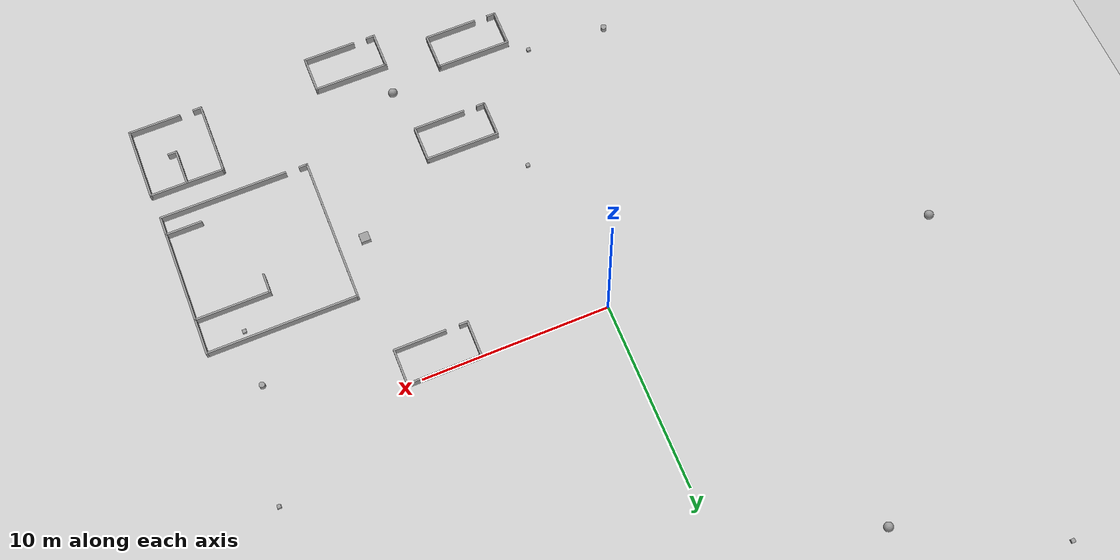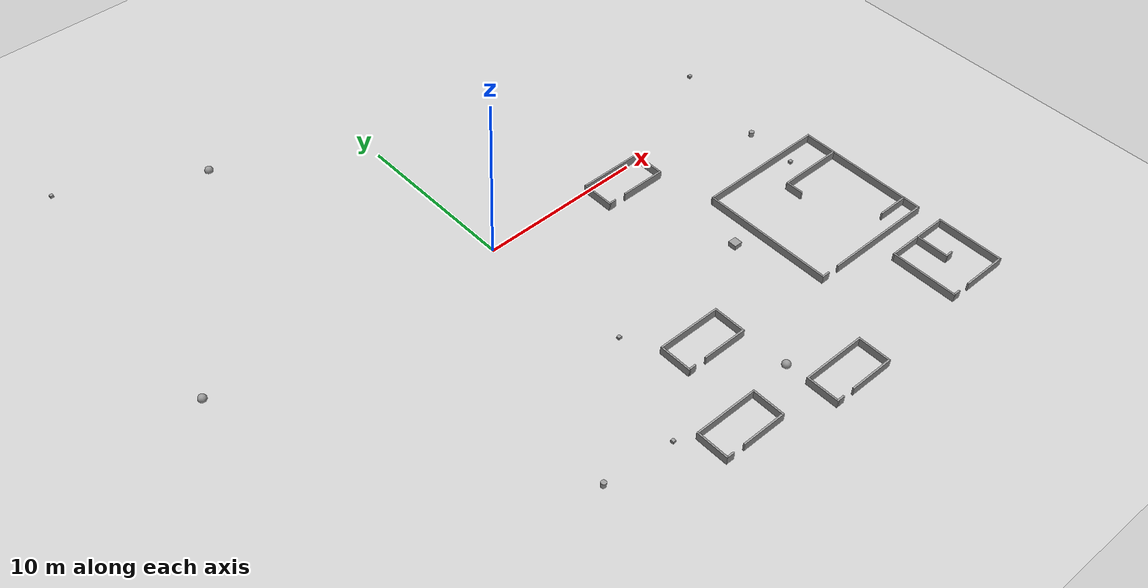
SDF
<sdf version="1.6">
 <world name="default">
  <model name="ground_plane">
   <static>1</static>
   <link name="link">
    <collision name="collision">
     <geometry><plane><normal>0 0 1</normal><size>40 40</size></plane></geometry>
     <surface>
      <contact><collide_bitmask>65535</collide_bitmask></contact>
      <friction><ode><mu>100</mu><mu2>50</mu2></ode></friction>
     </surface>
     <max_contacts>15</max_contacts>
    </collision>
    <visual name="visual">
     <cast_shadows>0</cast_shadows>
     <geometry><plane><normal>0 0 1</normal><size>40 40</size></plane></geometry>
     <material>
      <script><uri>file://media/materials/scripts/gazebo.material</uri><name>Gazebo/Grey</name></script>
     </material>
    </visual>
   </link>
  </model>
  <model name="shape2">
   <pose>8.8 -0.9 0 0 -0 0</pose>
   <link name="Wall_0">
    <collision name="Wall_0_Collision">
     <geometry><box><size>3.98685 0.1 0.5</size></box></geometry>
     <pose>0 0 0.25 0 -0 0</pose>
    </collision>
    <visual name="Wall_0_Visual">
     <pose>0 0 0.25 0 -0 0</pose>
     <geometry><box><size>3.98685 0.1 0.5</size></box></geometry>
     <material>
      <script><uri>file://media/materials/scripts/gazebo.material</uri><name>Gazebo/Grey</name></script>
      <ambient>1 1 1 1</ambient>
     </material>
     <meta><layer>0</layer></meta>
    </visual>
    <pose>0.003288 0.95 0 0 -0 0</pose>
   </link>
   <link name="Wall_1">
    <collision name="Wall_1_Collision">
     <geometry><box><size>2 0.1 0.5</size></box></geometry>
     <pose>0 0 0.25 0 -0 0</pose>
    </collision>
    <visual name="Wall_1_Visual">
     <pose>0 0 0.25 0 -0 0</pose>
     <geometry><box><size>2 0.1 0.5</size></box></geometry>
     <material>
      <script><uri>file://media/materials/scripts/gazebo.material</uri><name>Gazebo/Grey</name></script>
      <ambient>1 1 1 1</ambient>
     </material>
     <meta><layer>0</layer></meta>
    </visual>
    <pose>1.94671 0 0 0 -0 -1.5708</pose>
   </link>
   <link name="Wall_2">
    <collision name="Wall_2_Collision">
     <geometry><box><size>2.8 0.1 0.5</size></box></geometry>
     <pose>0 0 0.25 0 -0 0</pose>
    </collision>
    <visual name="Wall_2_Visual">
     <pose>0 0 0.25 0 -0 0</pose>
     <geometry><box><size>2.8 0.1 0.5</size></box></geometry>
     <material>
      <script><uri>file://media/materials/scripts/gazebo.material</uri><name>Gazebo/Grey</name></script>
      <ambient>1 1 1 1</ambient>
     </material>
     <meta><layer>0</layer></meta>
    </visual>
    <pose>0.596712 -0.95 0 0 -0 3.14159</pose>
   </link>
   <link name="Wall_4">
    <collision name="Wall_4_Collision">
     <geometry><box><size>2 0.1 0.5</size></box></geometry>
     <pose>0 0 0.25 0 -0 0</pose>
    </collision>
    <visual name="Wall_4_Visual">
     <pose>0 0 0.25 0 -0 0</pose>
     <geometry><box><size>2 0.1 0.5</size></box></geometry>
     <material>
      <script><uri>file://media/materials/scripts/gazebo.material</uri><name>Gazebo/Grey</name></script>
      <ambient>1 1 1 1</ambient>
     </material>
     <meta><layer>0</layer></meta>
    </visual>
    <pose>-1.94671 0 0 0 -0 -1.5708</pose>
   </link>
   <link name="Wall_5">
    <collision name="Wall_5_Collision">
     <geometry><box><size>0.5 0.1 0.5</size></box></geometry>
     <pose>0 0 0.25 0 -0 0</pose>
    </collision>
    <visual name="Wall_5_Visual">
     <pose>0 0 0.25 0 -0 0</pose>
     <geometry><box><size>0.5 0.1 0.5</size></box></geometry>
     <material>
      <script><uri>file://media/materials/scripts/gazebo.material</uri><name>Gazebo/Grey</name></script>
      <ambient>1 1 1 1</ambient>
     </material>
     <meta><layer>0</layer></meta>
    </visual>
    <pose>-1.74671 -0.95 0 0 -0 0</pose>
   </link>
   <static>1</static>
  </model>
  <model name="shape2">
   <pose>3.6 -12 0 0 -0 0</pose>
   <link name="Wall_0">
    <collision name="Wall_0_Collision">
     <geometry><box><size>3.98685 0.1 0.5</size></box></geometry>
     <pose>0 0 0.25 0 -0 0</pose>
    </collision>
    <visual name="Wall_0_Visual">
     <pose>0 0 0.25 0 -0 0</pose>
     <geometry><box><size>3.98685 0.1 0.5</size></box></geometry>
     <material>
      <script><uri>file://media/materials/scripts/gazebo.material</uri><name>Gazebo/Grey</name></script>
      <ambient>1 1 1 1</ambient>
     </material>
     <meta><layer>0</layer></meta>
    </visual>
    <pose>0.003288 0.95 0 0 -0 0</pose>
   </link>
   <link name="Wall_1">
    <collision name="Wall_1_Collision">
     <geometry><box><size>2 0.1 0.5</size></box></geometry>
     <pose>0 0 0.25 0 -0 0</pose>
    </collision>
    <visual name="Wall_1_Visual">
     <pose>0 0 0.25 0 -0 0</pose>
     <geometry><box><size>2 0.1 0.5</size></box></geometry>
     <material>
      <script><uri>file://media/materials/scripts/gazebo.material</uri><name>Gazebo/Grey</name></script>
      <ambient>1 1 1 1</ambient>
     </material>
     <meta><layer>0</layer></meta>
    </visual>
    <pose>1.94671 0 0 0 -0 -1.5708</pose>
   </link>
   <link name="Wall_2">
    <collision name="Wall_2_Collision">
     <geometry><box><size>2.8 0.1 0.5</size></box></geometry>
     <pose>0 0 0.25 0 -0 0</pose>
    </collision>
    <visual name="Wall_2_Visual">
     <pose>0 0 0.25 0 -0 0</pose>
     <geometry><box><size>2.8 0.1 0.5</size></box></geometry>
     <material>
      <script><uri>file://media/materials/scripts/gazebo.material</uri><name>Gazebo/Grey</name></script>
      <ambient>1 1 1 1</ambient>
     </material>
     <meta><layer>0</layer></meta>
    </visual>
    <pose>0.596712 -0.95 0 0 -0 3.14159</pose>
   </link>
   <link name="Wall_4">
    <collision name="Wall_4_Collision">
     <geometry><box><size>2 0.1 0.5</size></box></geometry>
     <pose>0 0 0.25 0 -0 0</pose>
    </collision>
    <visual name="Wall_4_Visual">
     <pose>0 0 0.25 0 -0 0</pose>
     <geometry><box><size>2 0.1 0.5</size></box></geometry>
     <material>
      <script><uri>file://media/materials/scripts/gazebo.material</uri><name>Gazebo/Grey</name></script>
      <ambient>1 1 1 1</ambient>
     </material>
     <meta><layer>0</layer></meta>
    </visual>
    <pose>-1.94671 0 0 0 -0 -1.5708</pose>
   </link>
   <link name="Wall_5">
    <collision name="Wall_5_Collision">
     <geometry><box><size>0.5 0.1 0.5</size></box></geometry>
     <pose>0 0 0.25 0 -0 0</pose>
    </collision>
    <visual name="Wall_5_Visual">
     <pose>0 0 0.25 0 -0 0</pose>
     <geometry><box><size>0.5 0.1 0.5</size></box></geometry>
     <material>
      <script><uri>file://media/materials/scripts/gazebo.material</uri><name>Gazebo/Grey</name></script>
      <ambient>1 1 1 1</ambient>
     </material>
     <meta><layer>0</layer></meta>
    </visual>
    <pose>-1.74671 -0.95 0 0 -0 0</pose>
   </link>
   <static>1</static>
  </model>
  <model name="shape6">
   <pose>15.4 -9.2 0 0 -0 0</pose>
   <link name="Wall_0">
    <collision name="Wall_0_Collision">
     <geometry><box><size>8 0.1 0.5</size></box></geometry>
     <pose>0 0 0.25 0 -0 0</pose>
    </collision>
    <visual name="Wall_0_Visual">
     <pose>0 0 0.25 0 -0 0</pose>
     <geometry><box><size>8 0.1 0.5</size></box></geometry>
     <material>
      <script><uri>file://media/materials/scripts/gazebo.material</uri><name>Gazebo/Grey</name></script>
      <ambient>1 1 1 1</ambient>
     </material>
     <meta><layer>0</layer></meta>
    </visual>
    <pose>-3.95 0 0 0 -0 -1.5708</pose>
   </link>
   <link name="Wall_1">
    <collision name="Wall_1_Collision">
     <geometry><box><size>0.5 0.1 0.5</size></box></geometry>
     <pose>0 0 0.25 0 -0 0</pose>
    </collision>
    <visual name="Wall_1_Visual">
     <pose>0 0 0.25 0 -0 0</pose>
     <geometry><box><size>0.5 0.1 0.5</size></box></geometry>
     <material>
      <script><uri>file://media/materials/scripts/gazebo.material</uri><name>Gazebo/Grey</name></script>
      <ambient>1 1 1 1</ambient>
     </material>
     <meta><layer>0</layer></meta>
    </visual>
    <pose>-3.75 -3.95 0 0 -0 0</pose>
   </link>
   <link name="Wall_10">
    <collision name="Wall_10_Collision">
     <geometry><box><size>1.95 0.1 0.5</size></box></geometry>
     <pose>0 0 0.25 0 -0 0</pose>
    </collision>
    <visual name="Wall_10_Visual">
     <pose>0 0 0.25 0 -0 0</pose>
     <geometry><box><size>1.95 0.1 0.5</size></box></geometry>
     <material>
      <script><uri>file://media/materials/scripts/gazebo.material</uri><name>Gazebo/Grey</name></script>
      <ambient>1 1 1 1</ambient>
     </material>
     <meta><layer>0</layer></meta>
    </visual>
    <pose>3.025 -2.95 0 0 -0 3.14159</pose>
   </link>
   <link name="Wall_12">
    <collision name="Wall_12_Collision">
     <geometry><box><size>1.1 0.1 0.5</size></box></geometry>
     <pose>0 0 0.25 0 -0 0</pose>
    </collision>
    <visual name="Wall_12_Visual">
     <pose>0 0 0.25 0 -0 0</pose>
     <geometry><box><size>1.1 0.1 0.5</size></box></geometry>
     <material>
      <script><uri>file://media/materials/scripts/gazebo.material</uri><name>Gazebo/Grey</name></script>
      <ambient>1 1 1 1</ambient>
     </material>
     <meta><layer>0</layer></meta>
    </visual>
    <pose>3.95 -3.45 0 0 -0 -1.5708</pose>
   </link>
   <link name="Wall_13">
    <collision name="Wall_13_Collision">
     <geometry><box><size>6.8 0.1 0.5</size></box></geometry>
     <pose>0 0 0.25 0 -0 0</pose>
    </collision>
    <visual name="Wall_13_Visual">
     <pose>0 0 0.25 0 -0 0</pose>
     <geometry><box><size>6.8 0.1 0.5</size></box></geometry>
     <material>
      <script><uri>file://media/materials/scripts/gazebo.material</uri><name>Gazebo/Grey</name></script>
      <ambient>1 1 1 1</ambient>
     </material>
     <meta><layer>0</layer></meta>
    </visual>
    <pose>0.6 -3.95 0 0 -0 3.14159</pose>
   </link>
   <link name="Wall_3">
    <collision name="Wall_3_Collision">
     <geometry><box><size>8 0.1 0.5</size></box></geometry>
     <pose>0 0 0.25 0 -0 0</pose>
    </collision>
    <visual name="Wall_3_Visual">
     <pose>0 0 0.25 0 -0 0</pose>
     <geometry><box><size>8 0.1 0.5</size></box></geometry>
     <material>
      <script><uri>file://media/materials/scripts/gazebo.material</uri><name>Gazebo/Grey</name></script>
      <ambient>1 1 1 1</ambient>
     </material>
     <meta><layer>0</layer></meta>
    </visual>
    <pose>-0 3.95 0 0 -0 0</pose>
   </link>
   <link name="Wall_4">
    <collision name="Wall_4_Collision">
     <geometry><box><size>2 0.1 0.5</size></box></geometry>
     <pose>0 0 0.25 0 -0 0</pose>
    </collision>
    <visual name="Wall_4_Visual">
     <pose>0 0 0.25 0 -0 0</pose>
     <geometry><box><size>2 0.1 0.5</size></box></geometry>
     <material>
      <script><uri>file://media/materials/scripts/gazebo.material</uri><name>Gazebo/Grey</name></script>
      <ambient>1 1 1 1</ambient>
     </material>
     <meta><layer>0</layer></meta>
    </visual>
    <pose>3.95 3 0 0 -0 -1.5708</pose>
   </link>
   <link name="Wall_5">
    <collision name="Wall_5_Collision">
     <geometry><box><size>5.1 0.1 0.5</size></box></geometry>
     <pose>0 0 0.25 0 -0 0</pose>
    </collision>
    <visual name="Wall_5_Visual">
     <pose>0 0 0.25 0 -0 0</pose>
     <geometry><box><size>5.1 0.1 0.5</size></box></geometry>
     <material>
      <script><uri>file://media/materials/scripts/gazebo.material</uri><name>Gazebo/Grey</name></script>
      <ambient>1 1 1 1</ambient>
     </material>
     <meta><layer>0</layer></meta>
    </visual>
    <pose>3.95 -0.45 0 0 -0 -1.5708</pose>
   </link>
   <link name="Wall_7">
    <collision name="Wall_7_Collision">
     <geometry><box><size>4 0.1 0.5</size></box></geometry>
     <pose>0 0 0.25 0 -0 0</pose>
    </collision>
    <visual name="Wall_7_Visual">
     <pose>0 0 0.25 0 -0 0</pose>
     <geometry><box><size>4 0.1 0.5</size></box></geometry>
     <material>
      <script><uri>file://media/materials/scripts/gazebo.material</uri><name>Gazebo/Grey</name></script>
      <ambient>1 1 1 1</ambient>
     </material>
     <meta><layer>0</layer></meta>
    </visual>
    <pose>2 2.05 0 0 -0 3.14159</pose>
   </link>
   <link name="Wall_8">
    <collision name="Wall_8_Collision">
     <geometry><box><size>1.1 0.1 0.5</size></box></geometry>
     <pose>0 0 0.25 0 -0 0</pose>
    </collision>
    <visual name="Wall_8_Visual">
     <pose>0 0 0.25 0 -0 0</pose>
     <geometry><box><size>1.1 0.1 0.5</size></box></geometry>
     <material>
      <script><uri>file://media/materials/scripts/gazebo.material</uri><name>Gazebo/Grey</name></script>
      <ambient>1 1 1 1</ambient>
     </material>
     <meta><layer>0</layer></meta>
    </visual>
    <pose>0.05 1.55 0 0 -0 -1.5708</pose>
   </link>
   <static>1</static>
  </model>
  <model name="shape2">
   <pose>7.6 -18.1 0 0 -0 0</pose>
   <link name="Wall_0">
    <collision name="Wall_0_Collision">
     <geometry><box><size>3.98685 0.1 0.5</size></box></geometry>
     <pose>0 0 0.25 0 -0 0</pose>
    </collision>
    <visual name="Wall_0_Visual">
     <pose>0 0 0.25 0 -0 0</pose>
     <geometry><box><size>3.98685 0.1 0.5</size></box></geometry>
     <material>
      <script><uri>file://media/materials/scripts/gazebo.material</uri><name>Gazebo/Grey</name></script>
      <ambient>1 1 1 1</ambient>
     </material>
     <meta><layer>0</layer></meta>
    </visual>
    <pose>0.003288 0.95 0 0 -0 0</pose>
   </link>
   <link name="Wall_1">
    <collision name="Wall_1_Collision">
     <geometry><box><size>2 0.1 0.5</size></box></geometry>
     <pose>0 0 0.25 0 -0 0</pose>
    </collision>
    <visual name="Wall_1_Visual">
     <pose>0 0 0.25 0 -0 0</pose>
     <geometry><box><size>2 0.1 0.5</size></box></geometry>
     <material>
      <script><uri>file://media/materials/scripts/gazebo.material</uri><name>Gazebo/Grey</name></script>
      <ambient>1 1 1 1</ambient>
     </material>
     <meta><layer>0</layer></meta>
    </visual>
    <pose>1.94671 0 0 0 -0 -1.5708</pose>
   </link>
   <link name="Wall_2">
    <collision name="Wall_2_Collision">
     <geometry><box><size>2.8 0.1 0.5</size></box></geometry>
     <pose>0 0 0.25 0 -0 0</pose>
    </collision>
    <visual name="Wall_2_Visual">
     <pose>0 0 0.25 0 -0 0</pose>
     <geometry><box><size>2.8 0.1 0.5</size></box></geometry>
     <material>
      <script><uri>file://media/materials/scripts/gazebo.material</uri><name>Gazebo/Grey</name></script>
      <ambient>1 1 1 1</ambient>
     </material>
     <meta><layer>0</layer></meta>
    </visual>
    <pose>0.596712 -0.95 0 0 -0 3.14159</pose>
   </link>
   <link name="Wall_4">
    <collision name="Wall_4_Collision">
     <geometry><box><size>2 0.1 0.5</size></box></geometry>
     <pose>0 0 0.25 0 -0 0</pose>
    </collision>
    <visual name="Wall_4_Visual">
     <pose>0 0 0.25 0 -0 0</pose>
     <geometry><box><size>2 0.1 0.5</size></box></geometry>
     <material>
      <script><uri>file://media/materials/scripts/gazebo.material</uri><name>Gazebo/Grey</name></script>
      <ambient>1 1 1 1</ambient>
     </material>
     <meta><layer>0</layer></meta>
    </visual>
    <pose>-1.94671 0 0 0 -0 -1.5708</pose>
   </link>
   <link name="Wall_5">
    <collision name="Wall_5_Collision">
     <geometry><box><size>0.5 0.1 0.5</size></box></geometry>
     <pose>0 0 0.25 0 -0 0</pose>
    </collision>
    <visual name="Wall_5_Visual">
     <pose>0 0 0.25 0 -0 0</pose>
     <geometry><box><size>0.5 0.1 0.5</size></box></geometry>
     <material>
      <script><uri>file://media/materials/scripts/gazebo.material</uri><name>Gazebo/Grey</name></script>
      <ambient>1 1 1 1</ambient>
     </material>
     <meta><layer>0</layer></meta>
    </visual>
    <pose>-1.74671 -0.95 0 0 -0 0</pose>
   </link>
   <static>1</static>
  </model>
  <model name="shape4">
   <pose>17.5 -16.5 0 0 -0 0</pose>
   <link name="Wall_0">
    <collision name="Wall_0_Collision">
     <geometry><box><size>4 0.1 0.5</size></box></geometry>
     <pose>0 0 0.25 0 -0 0</pose>
    </collision>
    <visual name="Wall_0_Visual">
     <pose>0 0 0.25 0 -0 0</pose>
     <geometry><box><size>4 0.1 0.5</size></box></geometry>
     <material>
      <script><uri>file://media/materials/scripts/gazebo.material</uri><name>Gazebo/Grey</name></script>
      <ambient>1 1 1 1</ambient>
     </material>
     <meta><layer>0</layer></meta>
    </visual>
    <pose>-1.95 0 0 0 -0 -1.5708</pose>
   </link>
   <link name="Wall_1">
    <collision name="Wall_1_Collision">
     <geometry><box><size>0.5 0.1 0.5</size></box></geometry>
     <pose>0 0 0.25 0 -0 0</pose>
    </collision>
    <visual name="Wall_1_Visual">
     <pose>0 0 0.25 0 -0 0</pose>
     <geometry><box><size>0.5 0.1 0.5</size></box></geometry>
     <material>
      <script><uri>file://media/materials/scripts/gazebo.material</uri><name>Gazebo/Grey</name></script>
      <ambient>1 1 1 1</ambient>
     </material>
     <meta><layer>0</layer></meta>
    </visual>
    <pose>-1.75 -1.95 0 0 -0 0</pose>
   </link>
   <link name="Wall_3">
    <collision name="Wall_3_Collision">
     <geometry><box><size>4 0.1 0.5</size></box></geometry>
     <pose>0 0 0.25 0 -0 0</pose>
    </collision>
    <visual name="Wall_3_Visual">
     <pose>0 0 0.25 0 -0 0</pose>
     <geometry><box><size>4 0.1 0.5</size></box></geometry>
     <material>
      <script><uri>file://media/materials/scripts/gazebo.material</uri><name>Gazebo/Grey</name></script>
      <ambient>1 1 1 1</ambient>
     </material>
     <meta><layer>0</layer></meta>
    </visual>
    <pose>0 1.95 0 0 -0 0</pose>
   </link>
   <link name="Wall_4">
    <collision name="Wall_4_Collision">
     <geometry><box><size>4 0.1 0.5</size></box></geometry>
     <pose>0 0 0.25 0 -0 0</pose>
    </collision>
    <visual name="Wall_4_Visual">
     <pose>0 0 0.25 0 -0 0</pose>
     <geometry><box><size>4 0.1 0.5</size></box></geometry>
     <material>
      <script><uri>file://media/materials/scripts/gazebo.material</uri><name>Gazebo/Grey</name></script>
      <ambient>1 1 1 1</ambient>
     </material>
     <meta><layer>0</layer></meta>
    </visual>
    <pose>1.95 0 0 0 -0 -1.5708</pose>
   </link>
   <link name="Wall_5">
    <collision name="Wall_5_Collision">
     <geometry><box><size>2.8 0.1 0.5</size></box></geometry>
     <pose>0 0 0.25 0 -0 0</pose>
    </collision>
    <visual name="Wall_5_Visual">
     <pose>0 0 0.25 0 -0 0</pose>
     <geometry><box><size>2.8 0.1 0.5</size></box></geometry>
     <material>
      <script><uri>file://media/materials/scripts/gazebo.material</uri><name>Gazebo/Grey</name></script>
      <ambient>1 1 1 1</ambient>
     </material>
     <meta><layer>0</layer></meta>
    </visual>
    <pose>0.6 -1.95 0 0 -0 3.14159</pose>
   </link>
   <link name="Wall_7">
    <collision name="Wall_7_Collision">
     <geometry><box><size>2 0.1 0.5</size></box></geometry>
     <pose>0 0 0.25 0 -0 0</pose>
    </collision>
    <visual name="Wall_7_Visual">
     <pose>0 0 0.25 0 -0 0</pose>
     <geometry><box><size>2 0.1 0.5</size></box></geometry>
     <material>
      <script><uri>file://media/materials/scripts/gazebo.material</uri><name>Gazebo/Grey</name></script>
      <ambient>1 1 1 1</ambient>
     </material>
     <meta><layer>0</layer></meta>
    </visual>
    <pose>0.015 0.991 0 0 -0 -1.5708</pose>
   </link>
   <link name="Wall_8">
    <collision name="Wall_8_Collision">
     <geometry><box><size>0.5 0.1 0.5</size></box></geometry>
     <pose>0 0 0.25 0 -0 0</pose>
    </collision>
    <visual name="Wall_8_Visual">
     <pose>0 0 0.25 0 -0 0</pose>
     <geometry><box><size>0.5 0.1 0.5</size></box></geometry>
     <material>
      <script><uri>file://media/materials/scripts/gazebo.material</uri><name>Gazebo/Grey</name></script>
      <ambient>1 1 1 1</ambient>
     </material>
     <meta><layer>0</layer></meta>
    </visual>
    <pose>0.215 0.041 0 0 -0 0</pose>
   </link>
   <static>1</static>
  </model>
  <model name="shape2">
   <pose>1.1 -16.9 0 0 -0 0</pose>
   <link name="Wall_0">
    <collision name="Wall_0_Collision">
     <geometry><box><size>3.98685 0.1 0.5</size></box></geometry>
     <pose>0 0 0.25 0 -0 0</pose>
    </collision>
    <visual name="Wall_0_Visual">
     <pose>0 0 0.25 0 -0 0</pose>
     <geometry><box><size>3.98685 0.1 0.5</size></box></geometry>
     <material>
      <script><uri>file://media/materials/scripts/gazebo.material</uri><name>Gazebo/Grey</name></script>
      <ambient>1 1 1 1</ambient>
     </material>
     <meta><layer>0</layer></meta>
    </visual>
    <pose>0.003288 0.95 0 0 -0 0</pose>
   </link>
   <link name="Wall_1">
    <collision name="Wall_1_Collision">
     <geometry><box><size>2 0.1 0.5</size></box></geometry>
     <pose>0 0 0.25 0 -0 0</pose>
    </collision>
    <visual name="Wall_1_Visual">
     <pose>0 0 0.25 0 -0 0</pose>
     <geometry><box><size>2 0.1 0.5</size></box></geometry>
     <material>
      <script><uri>file://media/materials/scripts/gazebo.material</uri><name>Gazebo/Grey</name></script>
      <ambient>1 1 1 1</ambient>
     </material>
     <meta><layer>0</layer></meta>
    </visual>
    <pose>1.94671 0 0 0 -0 -1.5708</pose>
   </link>
   <link name="Wall_2">
    <collision name="Wall_2_Collision">
     <geometry><box><size>2.8 0.1 0.5</size></box></geometry>
     <pose>0 0 0.25 0 -0 0</pose>
    </collision>
    <visual name="Wall_2_Visual">
     <pose>0 0 0.25 0 -0 0</pose>
     <geometry><box><size>2.8 0.1 0.5</size></box></geometry>
     <material>
      <script><uri>file://media/materials/scripts/gazebo.material</uri><name>Gazebo/Grey</name></script>
      <ambient>1 1 1 1</ambient>
     </material>
     <meta><layer>0</layer></meta>
    </visual>
    <pose>0.596712 -0.95 0 0 -0 3.14159</pose>
   </link>
   <link name="Wall_4">
    <collision name="Wall_4_Collision">
     <geometry><box><size>2 0.1 0.5</size></box></geometry>
     <pose>0 0 0.25 0 -0 0</pose>
    </collision>
    <visual name="Wall_4_Visual">
     <pose>0 0 0.25 0 -0 0</pose>
     <geometry><box><size>2 0.1 0.5</size></box></geometry>
     <material>
      <script><uri>file://media/materials/scripts/gazebo.material</uri><name>Gazebo/Grey</name></script>
      <ambient>1 1 1 1</ambient>
     </material>
     <meta><layer>0</layer></meta>
    </visual>
    <pose>-1.94671 0 0 0 -0 -1.5708</pose>
   </link>
   <link name="Wall_5">
    <collision name="Wall_5_Collision">
     <geometry><box><size>0.5 0.1 0.5</size></box></geometry>
     <pose>0 0 0.25 0 -0 0</pose>
    </collision>
    <visual name="Wall_5_Visual">
     <pose>0 0 0.25 0 -0 0</pose>
     <geometry><box><size>0.5 0.1 0.5</size></box></geometry>
     <material>
      <script><uri>file://media/materials/scripts/gazebo.material</uri><name>Gazebo/Grey</name></script>
      <ambient>1 1 1 1</ambient>
     </material>
     <meta><layer>0</layer></meta>
    </visual>
    <pose>-1.74671 -0.95 0 0 -0 0</pose>
   </link>
   <static>1</static>
  </model>
  <model name="ball_d=50">
   <link name="link_1">
    <inertial>
     <mass>1</mass>
     <inertia><ixx>0.1</ixx><ixy>0</ixy><ixz>0</ixz><iyy>0.1</iyy><iyz>0</iyz><izz>0.1</izz></inertia>
    </inertial>
    <pose>-17.25 1.65 0 0 -0 0</pose>
    <visual name="visual">
     <geometry><sphere><radius>0.25</radius></sphere></geometry>
     <material>
      <lighting>1</lighting>
      <script><uri>file://media/materials/scripts/gazebo.material</uri><name>Gazebo/Grey</name></script>
      <shader type="vertex"><normal_map>__default__</normal_map></shader>
      <ambient>0.3 0.3 0.3 1</ambient>
      <diffuse>0.7 0.7 0.7 1</diffuse>
      <specular>0.01 0.01 0.01 1</specular>
      <emissive>0 0 0 1</emissive>
     </material>
    </visual>
    <collision name="collision">
     <geometry><sphere><radius>0.25</radius></sphere></geometry>
     <surface>
      <friction>
       <ode><mu>1</mu><mu2>1</mu2><fdir1>0 0 0</fdir1><slip1>0</slip1><slip2>0</slip2></ode>
       <torsional>
        <coefficient>1</coefficient>
        <patch_radius>0</patch_radius>
        <surface_radius>0</surface_radius>
        <use_patch_radius>1</use_patch_radius>
        <ode><slip>0</slip></ode>
       </torsional>
      </friction>
      <bounce><restitution_coefficient>0</restitution_coefficient><threshold>1e+06</threshold></bounce>
      <contact>
       <collide_without_contact>0</collide_without_contact>
       <collide_without_contact_bitmask>1</collide_without_contact_bitmask>
       <collide_bitmask>1</collide_bitmask>
       <ode>
        <soft_cfm>0</soft_cfm>
        <soft_erp>0.2</soft_erp>
        <kp>1e+13</kp>
        <kd>1</kd>
        <max_vel>0.01</max_vel>
        <min_depth>0</min_depth>
       </ode>
       <bullet>
        <split_impulse>1</split_impulse>
        <split_impulse_penetration_threshold>-0.01</split_impulse_penetration_threshold>
        <soft_cfm>0</soft_cfm>
        <soft_erp>0.2</soft_erp>
        <kp>1e+13</kp>
        <kd>1</kd>
       </bullet>
      </contact>
     </surface>
    </collision>
   </link>
   <static>0</static>
  </model>
  <model name="box_d=20">
   <link name="link_2">
    <inertial>
     <mass>1</mass>
     <inertia>
      <ixx>0.166667</ixx>
      <ixy>0</ixy>
      <ixz>0</ixz>
      <iyy>0.166667</iyy>
      <iyz>0</iyz>
      <izz>0.166667</izz>
     </inertia>
    </inertial>
    <pose>18.5 3.3 0 0 -0 0</pose>
    <visual name="visual">
     <geometry><box><size>0.2 0.2 0.2</size></box></geometry>
     <material>
      <lighting>1</lighting>
      <script><uri>file://media/materials/scripts/gazebo.material</uri><name>Gazebo/Grey</name></script>
      <shader type="vertex"><normal_map>__default__</normal_map></shader>
      <ambient>0.3 0.3 0.3 1</ambient>
      <diffuse>0.7 0.7 0.7 1</diffuse>
      <specular>0.01 0.01 0.01 1</specular>
      <emissive>0 0 0 1</emissive>
     </material>
    </visual>
    <collision name="collision">
     <geometry><box><size>0.2 0.2 0.2</size></box></geometry>
     <surface>
      <friction>
       <ode><mu>1</mu><mu2>1</mu2><fdir1>0 0 0</fdir1><slip1>0</slip1><slip2>0</slip2></ode>
       <torsional>
        <coefficient>1</coefficient>
        <patch_radius>0</patch_radius>
        <surface_radius>0</surface_radius>
        <use_patch_radius>1</use_patch_radius>
        <ode><slip>0</slip></ode>
       </torsional>
      </friction>
      <bounce><restitution_coefficient>0</restitution_coefficient><threshold>1e+06</threshold></bounce>
      <contact>
       <collide_without_contact>0</collide_without_contact>
       <collide_without_contact_bitmask>1</collide_without_contact_bitmask>
       <collide_bitmask>1</collide_bitmask>
       <ode>
        <soft_cfm>0</soft_cfm>
        <soft_erp>0.2</soft_erp>
        <kp>1e+13</kp>
        <kd>1</kd>
        <max_vel>0.01</max_vel>
        <min_depth>0</min_depth>
       </ode>
       <bullet>
        <split_impulse>1</split_impulse>
        <split_impulse_penetration_threshold>-0.01</split_impulse_penetration_threshold>
        <soft_cfm>0</soft_cfm>
        <soft_erp>0.2</soft_erp>
        <kp>1e+13</kp>
        <kd>1</kd>
       </bullet>
      </contact>
     </surface>
    </collision>
   </link>
   <static>0</static>
  </model>
  <model name="ball_d=50">
   <link name="link_1">
    <inertial>
     <mass>1</mass>
     <inertia><ixx>0.1</ixx><ixy>0</ixy><ixz>0</ixz><iyy>0.1</iyy><iyz>0</iyz><izz>0.1</izz></inertia>
    </inertial>
    <pose>-7.95 15.35 0 0 -0 0</pose>
    <visual name="visual">
     <geometry><sphere><radius>0.25</radius></sphere></geometry>
     <material>
      <lighting>1</lighting>
      <script><uri>file://media/materials/scripts/gazebo.material</uri><name>Gazebo/Grey</name></script>
      <shader type="vertex"><normal_map>__default__</normal_map></shader>
      <ambient>0.3 0.3 0.3 1</ambient>
      <diffuse>0.7 0.7 0.7 1</diffuse>
      <specular>0.01 0.01 0.01 1</specular>
      <emissive>0 0 0 1</emissive>
     </material>
    </visual>
    <collision name="collision">
     <geometry><sphere><radius>0.25</radius></sphere></geometry>
     <surface>
      <friction>
       <ode><mu>1</mu><mu2>1</mu2><fdir1>0 0 0</fdir1><slip1>0</slip1><slip2>0</slip2></ode>
       <torsional>
        <coefficient>1</coefficient>
        <patch_radius>0</patch_radius>
        <surface_radius>0</surface_radius>
        <use_patch_radius>1</use_patch_radius>
        <ode><slip>0</slip></ode>
       </torsional>
      </friction>
      <bounce><restitution_coefficient>0</restitution_coefficient><threshold>1e+06</threshold></bounce>
      <contact>
       <collide_without_contact>0</collide_without_contact>
       <collide_without_contact_bitmask>1</collide_without_contact_bitmask>
       <collide_bitmask>1</collide_bitmask>
       <ode>
        <soft_cfm>0</soft_cfm>
        <soft_erp>0.2</soft_erp>
        <kp>1e+13</kp>
        <kd>1</kd>
        <max_vel>0.01</max_vel>
        <min_depth>0</min_depth>
       </ode>
       <bullet>
        <split_impulse>1</split_impulse>
        <split_impulse_penetration_threshold>-0.01</split_impulse_penetration_threshold>
        <soft_cfm>0</soft_cfm>
        <soft_erp>0.2</soft_erp>
        <kp>1e+13</kp>
        <kd>1</kd>
       </bullet>
      </contact>
     </surface>
    </collision>
   </link>
   <static>0</static>
  </model>
  <model name="box_d=20">
   <link name="link_2">
    <inertial>
     <mass>1</mass>
     <inertia>
      <ixx>0.166667</ixx>
      <ixy>0</ixy>
      <ixz>0</ixz>
      <iyy>0.166667</iyy>
      <iyz>0</iyz>
      <izz>0.166667</izz>
     </inertia>
    </inertial>
    <pose>17.3 -5.8 0 0 -0 0</pose>
    <visual name="visual">
     <geometry><box><size>0.2 0.2 0.2</size></box></geometry>
     <material>
      <lighting>1</lighting>
      <script><uri>file://media/materials/scripts/gazebo.material</uri><name>Gazebo/Grey</name></script>
      <shader type="vertex"><normal_map>__default__</normal_map></shader>
      <ambient>0.3 0.3 0.3 1</ambient>
      <diffuse>0.7 0.7 0.7 1</diffuse>
      <specular>0.01 0.01 0.01 1</specular>
      <emissive>0 0 0 1</emissive>
     </material>
    </visual>
    <collision name="collision">
     <geometry><box><size>0.2 0.2 0.2</size></box></geometry>
     <surface>
      <friction>
       <ode><mu>1</mu><mu2>1</mu2><fdir1>0 0 0</fdir1><slip1>0</slip1><slip2>0</slip2></ode>
       <torsional>
        <coefficient>1</coefficient>
        <patch_radius>0</patch_radius>
        <surface_radius>0</surface_radius>
        <use_patch_radius>1</use_patch_radius>
        <ode><slip>0</slip></ode>
       </torsional>
      </friction>
      <bounce><restitution_coefficient>0</restitution_coefficient><threshold>1e+06</threshold></bounce>
      <contact>
       <collide_without_contact>0</collide_without_contact>
       <collide_without_contact_bitmask>1</collide_without_contact_bitmask>
       <collide_bitmask>1</collide_bitmask>
       <ode>
        <soft_cfm>0</soft_cfm>
        <soft_erp>0.2</soft_erp>
        <kp>1e+13</kp>
        <kd>1</kd>
        <max_vel>0.01</max_vel>
        <min_depth>0</min_depth>
       </ode>
       <bullet>
        <split_impulse>1</split_impulse>
        <split_impulse_penetration_threshold>-0.01</split_impulse_penetration_threshold>
        <soft_cfm>0</soft_cfm>
        <soft_erp>0.2</soft_erp>
        <kp>1e+13</kp>
        <kd>1</kd>
       </bullet>
      </contact>
     </surface>
    </collision>
   </link>
   <static>0</static>
  </model>
  <model name="box_d=20">
   <link name="link_2">
    <inertial>
     <mass>1</mass>
     <inertia>
      <ixx>0.166667</ixx>
      <ixy>0</ixy>
      <ixz>0</ixz>
      <iyy>0.166667</iyy>
      <iyz>0</iyz>
      <izz>0.166667</izz>
     </inertia>
    </inertial>
    <pose>0.799999 -8.9 0 0 -0 0</pose>
    <visual name="visual">
     <geometry><box><size>0.2 0.2 0.2</size></box></geometry>
     <material>
      <lighting>1</lighting>
      <script><uri>file://media/materials/scripts/gazebo.material</uri><name>Gazebo/Grey</name></script>
      <shader type="vertex"><normal_map>__default__</normal_map></shader>
      <ambient>0.3 0.3 0.3 1</ambient>
      <diffuse>0.7 0.7 0.7 1</diffuse>
      <specular>0.01 0.01 0.01 1</specular>
      <emissive>0 0 0 1</emissive>
     </material>
    </visual>
    <collision name="collision">
     <geometry><box><size>0.2 0.2 0.2</size></box></geometry>
     <surface>
      <friction>
       <ode><mu>1</mu><mu2>1</mu2><fdir1>0 0 0</fdir1><slip1>0</slip1><slip2>0</slip2></ode>
       <torsional>
        <coefficient>1</coefficient>
        <patch_radius>0</patch_radius>
        <surface_radius>0</surface_radius>
        <use_patch_radius>1</use_patch_radius>
        <ode><slip>0</slip></ode>
       </torsional>
      </friction>
      <bounce><restitution_coefficient>0</restitution_coefficient><threshold>1e+06</threshold></bounce>
      <contact>
       <collide_without_contact>0</collide_without_contact>
       <collide_without_contact_bitmask>1</collide_without_contact_bitmask>
       <collide_bitmask>1</collide_bitmask>
       <ode>
        <soft_cfm>0</soft_cfm>
        <soft_erp>0.2</soft_erp>
        <kp>1e+13</kp>
        <kd>1</kd>
        <max_vel>0.01</max_vel>
        <min_depth>0</min_depth>
       </ode>
       <bullet>
        <split_impulse>1</split_impulse>
        <split_impulse_penetration_threshold>-0.01</split_impulse_penetration_threshold>
        <soft_cfm>0</soft_cfm>
        <soft_erp>0.2</soft_erp>
        <kp>1e+13</kp>
        <kd>1</kd>
       </bullet>
      </contact>
     </surface>
    </collision>
   </link>
   <static>0</static>
  </model>
  <model name="box_d=20">
   <link name="link_2">
    <inertial>
     <mass>1</mass>
     <inertia>
      <ixx>0.166667</ixx>
      <ixy>0</ixy>
      <ixz>0</ixz>
      <iyy>0.166667</iyy>
      <iyz>0</iyz>
      <izz>0.166667</izz>
     </inertia>
    </inertial>
    <pose>-1.8 -15.3 0 0 -0 0</pose>
    <visual name="visual">
     <geometry><box><size>0.2 0.2 0.2</size></box></geometry>
     <material>
      <lighting>1</lighting>
      <script><uri>file://media/materials/scripts/gazebo.material</uri><name>Gazebo/Grey</name></script>
      <shader type="vertex"><normal_map>__default__</normal_map></shader>
      <ambient>0.3 0.3 0.3 1</ambient>
      <diffuse>0.7 0.7 0.7 1</diffuse>
      <specular>0.01 0.01 0.01 1</specular>
      <emissive>0 0 0 1</emissive>
     </material>
    </visual>
    <collision name="collision">
     <geometry><box><size>0.2 0.2 0.2</size></box></geometry>
     <surface>
      <friction>
       <ode><mu>1</mu><mu2>1</mu2><fdir1>0 0 0</fdir1><slip1>0</slip1><slip2>0</slip2></ode>
       <torsional>
        <coefficient>1</coefficient>
        <patch_radius>0</patch_radius>
        <surface_radius>0</surface_radius>
        <use_patch_radius>1</use_patch_radius>
        <ode><slip>0</slip></ode>
       </torsional>
      </friction>
      <bounce><restitution_coefficient>0</restitution_coefficient><threshold>1e+06</threshold></bounce>
      <contact>
       <collide_without_contact>0</collide_without_contact>
       <collide_without_contact_bitmask>1</collide_without_contact_bitmask>
       <collide_bitmask>1</collide_bitmask>
       <ode>
        <soft_cfm>0</soft_cfm>
        <soft_erp>0.2</soft_erp>
        <kp>1e+13</kp>
        <kd>1</kd>
        <max_vel>0.01</max_vel>
        <min_depth>0</min_depth>
       </ode>
       <bullet>
        <split_impulse>1</split_impulse>
        <split_impulse_penetration_threshold>-0.01</split_impulse_penetration_threshold>
        <soft_cfm>0</soft_cfm>
        <soft_erp>0.2</soft_erp>
        <kp>1e+13</kp>
        <kd>1</kd>
       </bullet>
      </contact>
     </surface>
    </collision>
   </link>
   <static>0</static>
  </model>
  <model name="box_d=20">
   <link name="link_2">
    <inertial>
     <mass>1</mass>
     <inertia>
      <ixx>0.166667</ixx>
      <ixy>0</ixy>
      <ixz>0</ixz>
      <iyy>0.166667</iyy>
      <iyz>0</iyz>
      <izz>0.166667</izz>
     </inertia>
    </inertial>
    <pose>-15.7 19.3 0 0 -0 0</pose>
    <visual name="visual">
     <geometry><box><size>0.2 0.2 0.2</size></box></geometry>
     <material>
      <lighting>1</lighting>
      <script><uri>file://media/materials/scripts/gazebo.material</uri><name>Gazebo/Grey</name></script>
      <shader type="vertex"><normal_map>__default__</normal_map></shader>
      <ambient>0.3 0.3 0.3 1</ambient>
      <diffuse>0.7 0.7 0.7 1</diffuse>
      <specular>0.01 0.01 0.01 1</specular>
      <emissive>0 0 0 1</emissive>
     </material>
    </visual>
    <collision name="collision">
     <geometry><box><size>0.2 0.2 0.2</size></box></geometry>
     <surface>
      <friction>
       <ode><mu>1</mu><mu2>1</mu2><fdir1>0 0 0</fdir1><slip1>0</slip1><slip2>0</slip2></ode>
       <torsional>
        <coefficient>1</coefficient>
        <patch_radius>0</patch_radius>
        <surface_radius>0</surface_radius>
        <use_patch_radius>1</use_patch_radius>
        <ode><slip>0</slip></ode>
       </torsional>
      </friction>
      <bounce><restitution_coefficient>0</restitution_coefficient><threshold>1e+06</threshold></bounce>
      <contact>
       <collide_without_contact>0</collide_without_contact>
       <collide_without_contact_bitmask>1</collide_without_contact_bitmask>
       <collide_bitmask>1</collide_bitmask>
       <ode>
        <soft_cfm>0</soft_cfm>
        <soft_erp>0.2</soft_erp>
        <kp>1e+13</kp>
        <kd>1</kd>
        <max_vel>0.01</max_vel>
        <min_depth>0</min_depth>
       </ode>
       <bullet>
        <split_impulse>1</split_impulse>
        <split_impulse_penetration_threshold>-0.01</split_impulse_penetration_threshold>
        <soft_cfm>0</soft_cfm>
        <soft_erp>0.2</soft_erp>
        <kp>1e+13</kp>
        <kd>1</kd>
       </bullet>
      </contact>
     </surface>
    </collision>
   </link>
   <static>0</static>
  </model>
  <model name="cylinder_d=30">
   <link name="link_0">
    <inertial>
     <mass>1</mass>
     <inertia><ixx>0.145833</ixx><ixy>0</ixy><ixz>0</ixz><iyy>0.145833</iyy><iyz>0</iyz><izz>0.125</izz></inertia>
    </inertial>
    <pose>17.35 -2.75 0 0 -0 0</pose>
    <visual name="visual">
     <geometry><cylinder><radius>0.15</radius><length>0.5</length></cylinder></geometry>
     <material>
      <lighting>1</lighting>
      <script><uri>file://media/materials/scripts/gazebo.material</uri><name>Gazebo/Grey</name></script>
      <shader type="vertex"><normal_map>__default__</normal_map></shader>
      <ambient>0.3 0.3 0.3 1</ambient>
      <diffuse>0.7 0.7 0.7 1</diffuse>
      <specular>0.01 0.01 0.01 1</specular>
      <emissive>0 0 0 1</emissive>
     </material>
    </visual>
    <collision name="collision">
     <geometry><cylinder><radius>0.15</radius><length>0.5</length></cylinder></geometry>
     <surface>
      <friction>
       <ode><mu>1</mu><mu2>1</mu2><fdir1>0 0 0</fdir1><slip1>0</slip1><slip2>0</slip2></ode>
       <torsional>
        <coefficient>1</coefficient>
        <patch_radius>0</patch_radius>
        <surface_radius>0</surface_radius>
        <use_patch_radius>1</use_patch_radius>
        <ode><slip>0</slip></ode>
       </torsional>
      </friction>
      <bounce><restitution_coefficient>0</restitution_coefficient><threshold>1e+06</threshold></bounce>
      <contact>
       <collide_without_contact>0</collide_without_contact>
       <collide_without_contact_bitmask>1</collide_without_contact_bitmask>
       <collide_bitmask>1</collide_bitmask>
       <ode>
        <soft_cfm>0</soft_cfm>
        <soft_erp>0.2</soft_erp>
        <kp>1e+13</kp>
        <kd>1</kd>
        <max_vel>0.01</max_vel>
        <min_depth>0</min_depth>
       </ode>
       <bullet>
        <split_impulse>1</split_impulse>
        <split_impulse_penetration_threshold>-0.01</split_impulse_penetration_threshold>
        <soft_cfm>0</soft_cfm>
        <soft_erp>0.2</soft_erp>
        <kp>1e+13</kp>
        <kd>1</kd>
       </bullet>
      </contact>
     </surface>
    </collision>
   </link>
   <static>0</static>
  </model>
  <model name="cylinder_d=30">
   <link name="link_0">
    <inertial>
     <mass>1</mass>
     <inertia><ixx>0.145833</ixx><ixy>0</ixy><ixz>0</ixz><iyy>0.145833</iyy><iyz>0</iyz><izz>0.125</izz></inertia>
    </inertial>
    <pose>-6.05 -14.95 0 0 -0 0</pose>
    <visual name="visual">
     <geometry><cylinder><radius>0.15</radius><length>0.5</length></cylinder></geometry>
     <material>
      <lighting>1</lighting>
      <script><uri>file://media/materials/scripts/gazebo.material</uri><name>Gazebo/Grey</name></script>
      <shader type="vertex"><normal_map>__default__</normal_map></shader>
      <ambient>0.3 0.3 0.3 1</ambient>
      <diffuse>0.7 0.7 0.7 1</diffuse>
      <specular>0.01 0.01 0.01 1</specular>
      <emissive>0 0 0 1</emissive>
     </material>
    </visual>
    <collision name="collision">
     <geometry><cylinder><radius>0.15</radius><length>0.5</length></cylinder></geometry>
     <surface>
      <friction>
       <ode><mu>1</mu><mu2>1</mu2><fdir1>0 0 0</fdir1><slip1>0</slip1><slip2>0</slip2></ode>
       <torsional>
        <coefficient>1</coefficient>
        <patch_radius>0</patch_radius>
        <surface_radius>0</surface_radius>
        <use_patch_radius>1</use_patch_radius>
        <ode><slip>0</slip></ode>
       </torsional>
      </friction>
      <bounce><restitution_coefficient>0</restitution_coefficient><threshold>1e+06</threshold></bounce>
      <contact>
       <collide_without_contact>0</collide_without_contact>
       <collide_without_contact_bitmask>1</collide_without_contact_bitmask>
       <collide_bitmask>1</collide_bitmask>
       <ode>
        <soft_cfm>0</soft_cfm>
        <soft_erp>0.2</soft_erp>
        <kp>1e+13</kp>
        <kd>1</kd>
        <max_vel>0.01</max_vel>
        <min_depth>0</min_depth>
       </ode>
       <bullet>
        <split_impulse>1</split_impulse>
        <split_impulse_penetration_threshold>-0.01</split_impulse_penetration_threshold>
        <soft_cfm>0</soft_cfm>
        <soft_erp>0.2</soft_erp>
        <kp>1e+13</kp>
        <kd>1</kd>
       </bullet>
      </contact>
     </surface>
    </collision>
   </link>
   <static>0</static>
  </model>
  <model name="box_d=50">
   <link name="link_2">
    <inertial>
     <mass>1</mass>
     <inertia>
      <ixx>0.166667</ixx>
      <ixy>0</ixy>
      <ixz>0</ixz>
      <iyy>0.166667</iyy>
      <iyz>0</iyz>
      <izz>0.166667</izz>
     </inertia>
    </inertial>
    <pose>10.05 -8.25 0 0 -0 0</pose>
    <visual name="visual">
     <geometry><box><size>0.5 0.5 0.5</size></box></geometry>
     <material>
      <lighting>1</lighting>
      <script><uri>file://media/materials/scripts/gazebo.material</uri><name>Gazebo/Grey</name></script>
      <shader type="vertex"><normal_map>__default__</normal_map></shader>
      <ambient>0.3 0.3 0.3 1</ambient>
      <diffuse>0.7 0.7 0.7 1</diffuse>
      <specular>0.01 0.01 0.01 1</specular>
      <emissive>0 0 0 1</emissive>
     </material>
    </visual>
    <collision name="collision">
     <geometry><box><size>0.5 0.5 0.5</size></box></geometry>
     <surface>
      <friction>
       <ode><mu>1</mu><mu2>1</mu2><fdir1>0 0 0</fdir1><slip1>0</slip1><slip2>0</slip2></ode>
       <torsional>
        <coefficient>1</coefficient>
        <patch_radius>0</patch_radius>
        <surface_radius>0</surface_radius>
        <use_patch_radius>1</use_patch_radius>
        <ode><slip>0</slip></ode>
       </torsional>
      </friction>
      <bounce><restitution_coefficient>0</restitution_coefficient><threshold>1e+06</threshold></bounce>
      <contact>
       <collide_without_contact>0</collide_without_contact>
       <collide_without_contact_bitmask>1</collide_without_contact_bitmask>
       <collide_bitmask>1</collide_bitmask>
       <ode>
        <soft_cfm>0</soft_cfm>
        <soft_erp>0.2</soft_erp>
        <kp>1e+13</kp>
        <kd>1</kd>
        <max_vel>0.01</max_vel>
        <min_depth>0</min_depth>
       </ode>
       <bullet>
        <split_impulse>1</split_impulse>
        <split_impulse_penetration_threshold>-0.01</split_impulse_penetration_threshold>
        <soft_cfm>0</soft_cfm>
        <soft_erp>0.2</soft_erp>
        <kp>1e+13</kp>
        <kd>1</kd>
       </bullet>
      </contact>
     </surface>
    </collision>
   </link>
   <static>0</static>
  </model>
  <model name="ball_d=50">
   <link name="link_1">
    <inertial>
     <mass>1</mass>
     <inertia><ixx>0.1</ixx><ixy>0</ixy><ixz>0</ixz><iyy>0.1</iyy><iyz>0</iyz><izz>0.1</izz></inertia>
    </inertial>
    <pose>5.85 -15.65 0 0 -0 0</pose>
    <visual name="visual">
     <geometry><sphere><radius>0.25</radius></sphere></geometry>
     <material>
      <lighting>1</lighting>
      <script><uri>file://media/materials/scripts/gazebo.material</uri><name>Gazebo/Grey</name></script>
      <shader type="vertex"><normal_map>__default__</normal_map></shader>
      <ambient>0.3 0.3 0.3 1</ambient>
      <diffuse>0.7 0.7 0.7 1</diffuse>
      <specular>0.01 0.01 0.01 1</specular>
      <emissive>0 0 0 1</emissive>
     </material>
    </visual>
    <collision name="collision">
     <geometry><sphere><radius>0.25</radius></sphere></geometry>
     <surface>
      <friction>
       <ode><mu>1</mu><mu2>1</mu2><fdir1>0 0 0</fdir1><slip1>0</slip1><slip2>0</slip2></ode>
       <torsional>
        <coefficient>1</coefficient>
        <patch_radius>0</patch_radius>
        <surface_radius>0</surface_radius>
        <use_patch_radius>1</use_patch_radius>
        <ode><slip>0</slip></ode>
       </torsional>
      </friction>
      <bounce><restitution_coefficient>0</restitution_coefficient><threshold>1e+06</threshold></bounce>
      <contact>
       <collide_without_contact>0</collide_without_contact>
       <collide_without_contact_bitmask>1</collide_without_contact_bitmask>
       <collide_bitmask>1</collide_bitmask>
       <ode>
        <soft_cfm>0</soft_cfm>
        <soft_erp>0.2</soft_erp>
        <kp>1e+13</kp>
        <kd>1</kd>
        <max_vel>0.01</max_vel>
        <min_depth>0</min_depth>
       </ode>
       <bullet>
        <split_impulse>1</split_impulse>
        <split_impulse_penetration_threshold>-0.01</split_impulse_penetration_threshold>
        <soft_cfm>0</soft_cfm>
        <soft_erp>0.2</soft_erp>
        <kp>1e+13</kp>
        <kd>1</kd>
       </bullet>
      </contact>
     </surface>
    </collision>
   </link>
   <static>0</static>
  </model>
 </world>
</sdf>
